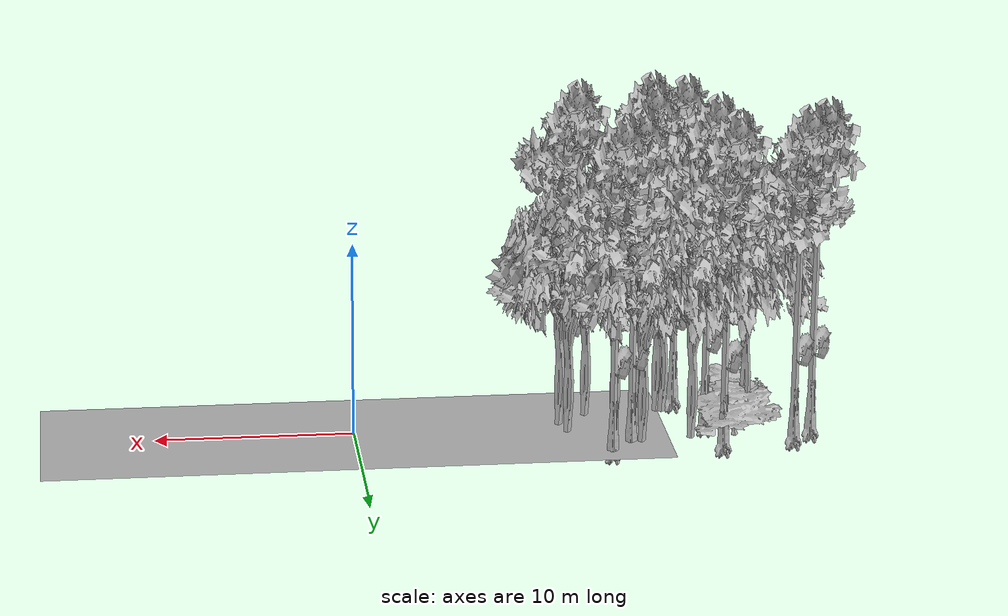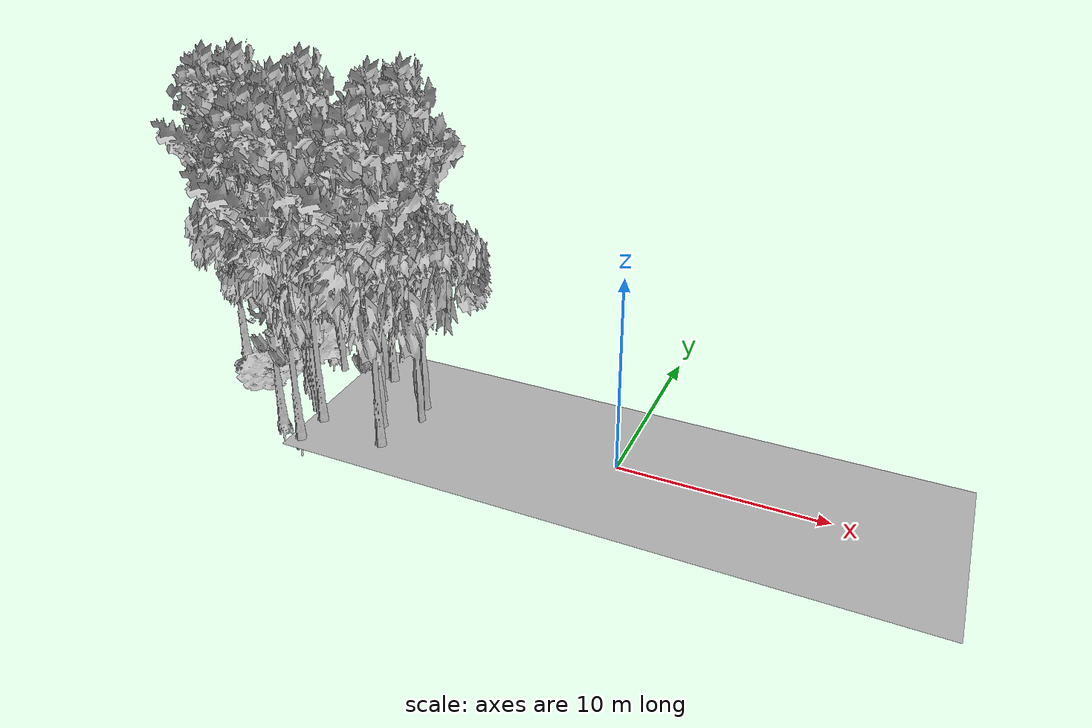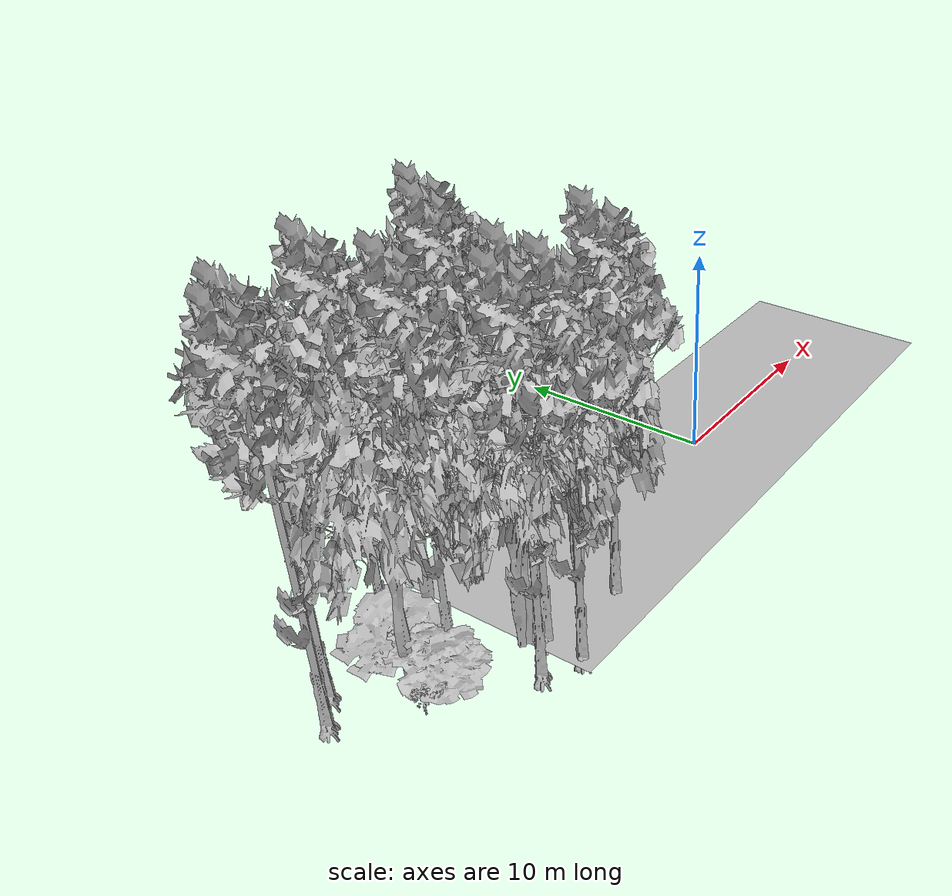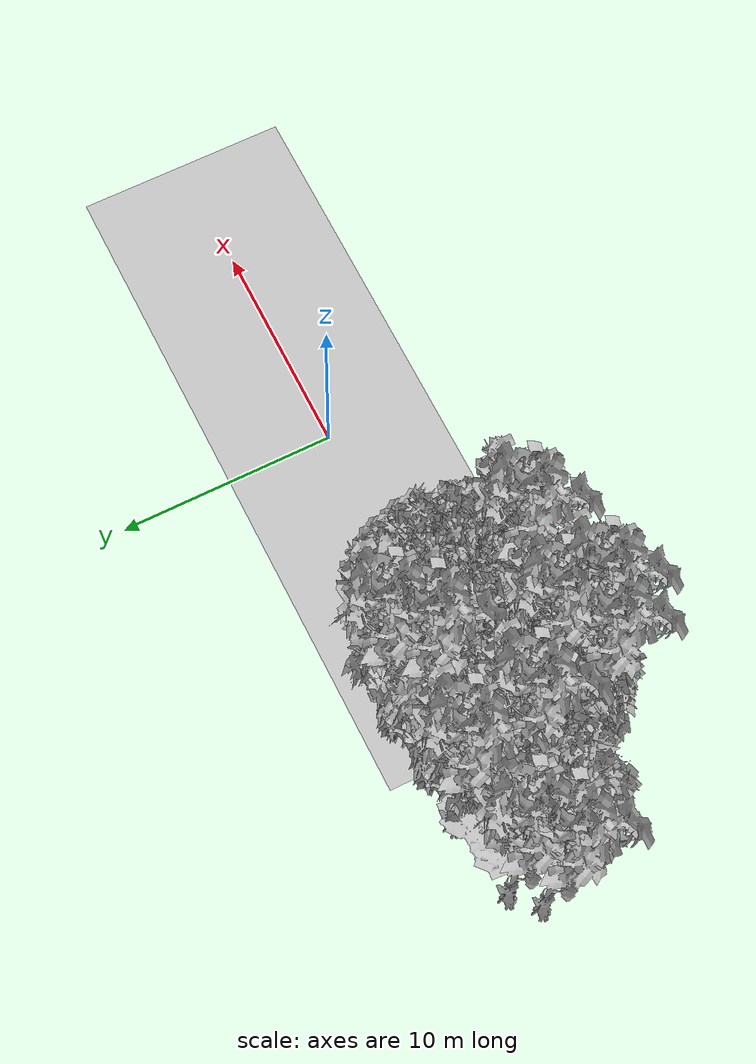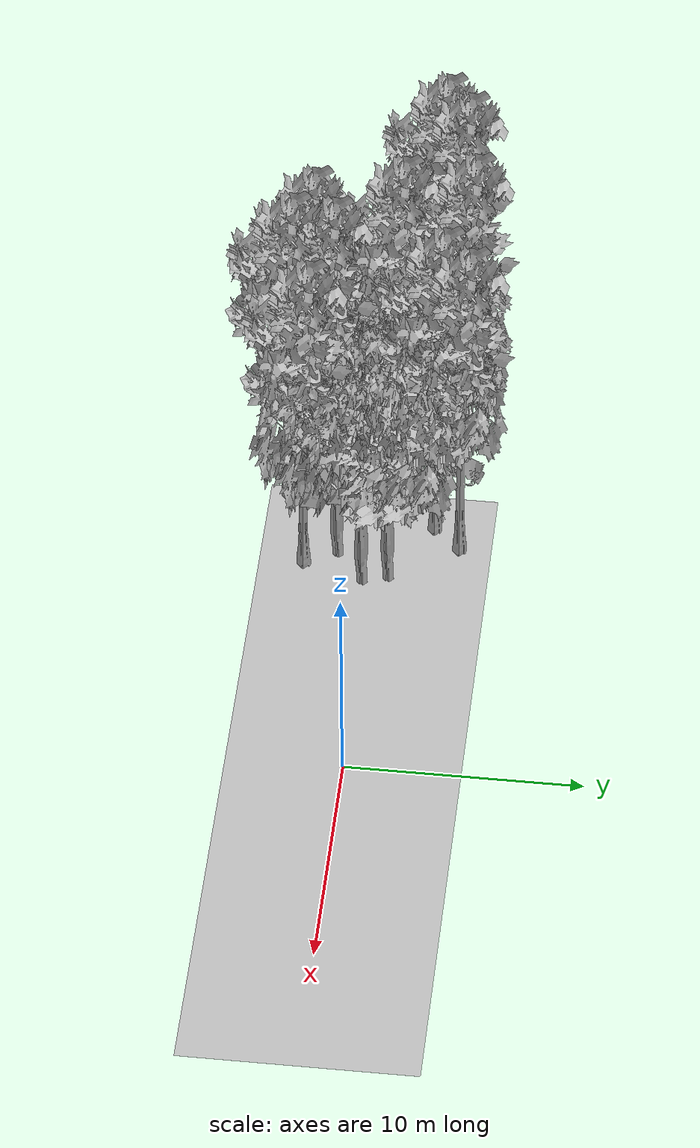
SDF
<sdf version="1.7">
 <world name="default">
  <model name="ground_plane">
   <static>1</static>
   <link name="link">
    <collision name="collision">
     <pose>-50 0 0 0 -0 0</pose>
     <geometry><plane><normal>0 0 1</normal><size>100 100</size></plane></geometry>
     <surface><contact><ode><min_depth>0.01</min_depth><max_vel>0</max_vel></ode></contact></surface>
    </collision>
    <visual name="grass">
     <cast_shadows>0</cast_shadows>
     <geometry>
      <mesh>
       <scale>0.5814285714285714 0.18142857142857144 0.1</scale>
       <uri>file://grass_plane/meshes/grass_plane.dae</uri>
      </mesh>
     </geometry>
    </visual>
   </link>
  </model>
  <model name="Tree 13">
   <static>1</static>
   <pose>-17.790858090442658 0.2607202713093333 0 1.57079 -0 0</pose>
   <link name="link">
    <collision name="collision">
     <geometry><mesh><scale>3.5 5 3.5</scale><uri>model://tree_9/meshes/tree_9.obj</uri></mesh></geometry>
    </collision>
    <visual name="visual">
     <geometry><mesh><scale>3.5 5 3.5</scale><uri>model://tree_9/meshes/tree_9.obj</uri></mesh></geometry>
    </visual>
   </link>
  </model>
  <model name="Tree 27">
   <static>1</static>
   <pose>-15.120431468305682 -4.108669234178874 0 1.57079 -0 0</pose>
   <link name="link">
    <collision name="collision">
     <geometry><mesh><scale>3.5 5 3.5</scale><uri>model://tree_9/meshes/tree_9.obj</uri></mesh></geometry>
    </collision>
    <visual name="visual">
     <geometry><mesh><scale>3.5 5 3.5</scale><uri>model://tree_9/meshes/tree_9.obj</uri></mesh></geometry>
    </visual>
   </link>
  </model>
  <model name="Tree 63">
   <static>1</static>
   <pose>-10.832471750782233 0.667904177542118 0 1.57079 -0 0</pose>
   <link name="link">
    <collision name="collision">
     <geometry><mesh><scale>3.5 5 3.5</scale><uri>model://tree_2/meshes/tree_2.obj</uri></mesh></geometry>
    </collision>
    <visual name="visual">
     <geometry><mesh><scale>3.5 5 3.5</scale><uri>model://tree_2/meshes/tree_2.obj</uri></mesh></geometry>
    </visual>
   </link>
  </model>
  <model name="Tree 81">
   <static>1</static>
   <pose>-19.849428426075367 0.5287848371703685 0 1.57079 -0 0</pose>
   <link name="link">
    <collision name="collision">
     <geometry><mesh><scale>3.5 5 3.5</scale><uri>model://tree_2/meshes/tree_2.obj</uri></mesh></geometry>
    </collision>
    <visual name="visual">
     <geometry><mesh><scale>3.5 5 3.5</scale><uri>model://tree_2/meshes/tree_2.obj</uri></mesh></geometry>
    </visual>
   </link>
  </model>
  <model name="Tree 118">
   <static>1</static>
   <pose>-15.996105113434723 -1.777081332563771 0 1.57079 -0 0</pose>
   <link name="link">
    <collision name="collision">
     <geometry><mesh><scale>3.5 5 3.5</scale><uri>model://tree_2/meshes/tree_2.obj</uri></mesh></geometry>
    </collision>
    <visual name="visual">
     <geometry><mesh><scale>3.5 5 3.5</scale><uri>model://tree_2/meshes/tree_2.obj</uri></mesh></geometry>
    </visual>
   </link>
  </model>
  <model name="Tree 134">
   <static>1</static>
   <pose>-15.722119424426573 -1.8780745041905735 0 1.57079 -0 0</pose>
   <link name="link">
    <collision name="collision">
     <geometry><mesh><scale>3.5 5 3.5</scale><uri>model://tree_2/meshes/tree_2.obj</uri></mesh></geometry>
    </collision>
    <visual name="visual">
     <geometry><mesh><scale>3.5 5 3.5</scale><uri>model://tree_2/meshes/tree_2.obj</uri></mesh></geometry>
    </visual>
   </link>
  </model>
  <model name="Tree 148">
   <static>1</static>
   <pose>-13.241386765604908 0.3433074871372437 0 1.57079 -0 0</pose>
   <link name="link">
    <collision name="collision">
     <geometry><mesh><scale>3.5 5 3.5</scale><uri>model://tree_2/meshes/tree_2.obj</uri></mesh></geometry>
    </collision>
    <visual name="visual">
     <geometry><mesh><scale>3.5 5 3.5</scale><uri>model://tree_2/meshes/tree_2.obj</uri></mesh></geometry>
    </visual>
   </link>
  </model>
  <model name="Tree 198">
   <static>1</static>
   <pose>-15.03541736303118 -2.3353201928146454 0 1.57079 -0 0</pose>
   <link name="link">
    <collision name="collision">
     <geometry><mesh><scale>3.5 5 3.5</scale><uri>model://tree_9/meshes/tree_9.obj</uri></mesh></geometry>
    </collision>
    <visual name="visual">
     <geometry><mesh><scale>3.5 5 3.5</scale><uri>model://tree_9/meshes/tree_9.obj</uri></mesh></geometry>
    </visual>
   </link>
  </model>
  <model name="Tree 287">
   <static>1</static>
   <pose>-12.648419117404586 3.5444123200523343 0 1.57079 -0 0</pose>
   <link name="link">
    <collision name="collision">
     <geometry><mesh><scale>3.5 5 3.5</scale><uri>model://tree_9/meshes/tree_9.obj</uri></mesh></geometry>
    </collision>
    <visual name="visual">
     <geometry><mesh><scale>3.5 5 3.5</scale><uri>model://tree_9/meshes/tree_9.obj</uri></mesh></geometry>
    </visual>
   </link>
  </model>
  <model name="Tree 301">
   <static>1</static>
   <pose>-21.937140124690295 2.588142714011724 0 1.57079 -0 0</pose>
   <link name="link">
    <collision name="collision">
     <geometry><mesh><scale>3.5 5 3.5</scale><uri>model://tree_9/meshes/tree_9.obj</uri></mesh></geometry>
    </collision>
    <visual name="visual">
     <geometry><mesh><scale>3.5 5 3.5</scale><uri>model://tree_9/meshes/tree_9.obj</uri></mesh></geometry>
    </visual>
   </link>
  </model>
  <model name="Tree 306">
   <static>1</static>
   <pose>-16.74074105376326 -3.3765141145364215 0 1.57079 -0 0</pose>
   <link name="link">
    <collision name="collision">
     <geometry><mesh><scale>3.5 5 3.5</scale><uri>model://tree_9/meshes/tree_9.obj</uri></mesh></geometry>
    </collision>
    <visual name="visual">
     <geometry><mesh><scale>3.5 5 3.5</scale><uri>model://tree_9/meshes/tree_9.obj</uri></mesh></geometry>
    </visual>
   </link>
  </model>
  <model name="Tree 307">
   <static>1</static>
   <pose>-11.212591257246068 -2.9768851143468282 0 1.57079 -0 0</pose>
   <link name="link">
    <collision name="collision">
     <geometry><mesh><scale>3.5 5 3.5</scale><uri>model://tree_9/meshes/tree_9.obj</uri></mesh></geometry>
    </collision>
    <visual name="visual">
     <geometry><mesh><scale>3.5 5 3.5</scale><uri>model://tree_9/meshes/tree_9.obj</uri></mesh></geometry>
    </visual>
   </link>
  </model>
  <model name="Tree 319">
   <static>1</static>
   <pose>-22.994126803892183 1.5587377444901094 0 1.57079 -0 0</pose>
   <link name="link">
    <collision name="collision">
     <geometry><mesh><scale>3.5 5 3.5</scale><uri>model://tree_9/meshes/tree_9.obj</uri></mesh></geometry>
    </collision>
    <visual name="visual">
     <geometry><mesh><scale>3.5 5 3.5</scale><uri>model://tree_9/meshes/tree_9.obj</uri></mesh></geometry>
    </visual>
   </link>
  </model>
  <model name="Tree 324">
   <static>1</static>
   <pose>-10.524084971911826 -0.4162451319368259 0 1.57079 -0 0</pose>
   <link name="link">
    <collision name="collision">
     <geometry><mesh><scale>3.5 5 3.5</scale><uri>model://tree_2/meshes/tree_2.obj</uri></mesh></geometry>
    </collision>
    <visual name="visual">
     <geometry><mesh><scale>3.5 5 3.5</scale><uri>model://tree_2/meshes/tree_2.obj</uri></mesh></geometry>
    </visual>
   </link>
  </model>
  <model name="Tree 376">
   <static>1</static>
   <pose>-12.009148092209571 -1.6207558244116758 0 1.57079 -0 0</pose>
   <link name="link">
    <collision name="collision">
     <geometry><mesh><scale>3.5 5 3.5</scale><uri>model://tree_2/meshes/tree_2.obj</uri></mesh></geometry>
    </collision>
    <visual name="visual">
     <geometry><mesh><scale>3.5 5 3.5</scale><uri>model://tree_2/meshes/tree_2.obj</uri></mesh></geometry>
    </visual>
   </link>
  </model>
  <model name="Tree 398">
   <static>1</static>
   <pose>-19.50669204344433 -0.48880172412500755 0 1.57079 -0 0</pose>
   <link name="link">
    <collision name="collision">
     <geometry><mesh><scale>4 2.5 4</scale><uri>model://tree_1/meshes/tree_1.obj</uri></mesh></geometry>
    </collision>
    <visual name="visual">
     <geometry><mesh><scale>4 2.5 4</scale><uri>model://tree_1/meshes/tree_1.obj</uri></mesh></geometry>
    </visual>
   </link>
  </model>
  <model name="Tree 404">
   <static>1</static>
   <pose>-18.259874701008393 3.209417131763775 0 1.57079 -0 0</pose>
   <link name="link">
    <collision name="collision">
     <geometry><mesh><scale>3.5 5 3.5</scale><uri>model://tree_9/meshes/tree_9.obj</uri></mesh></geometry>
    </collision>
    <visual name="visual">
     <geometry><mesh><scale>3.5 5 3.5</scale><uri>model://tree_9/meshes/tree_9.obj</uri></mesh></geometry>
    </visual>
   </link>
  </model>
  <model name="Tree 411">
   <static>1</static>
   <pose>-14.358910496159517 2.4115342527191004 0 1.57079 -0 0</pose>
   <link name="link">
    <collision name="collision">
     <geometry><mesh><scale>3.5 5 3.5</scale><uri>model://tree_2/meshes/tree_2.obj</uri></mesh></geometry>
    </collision>
    <visual name="visual">
     <geometry><mesh><scale>3.5 5 3.5</scale><uri>model://tree_2/meshes/tree_2.obj</uri></mesh></geometry>
    </visual>
   </link>
  </model>
  <model name="Tree 425">
   <static>1</static>
   <pose>-16.879353407964253 2.1328199741284024 0 1.57079 -0 0</pose>
   <link name="link">
    <collision name="collision">
     <geometry><mesh><scale>3.5 5 3.5</scale><uri>model://tree_2/meshes/tree_2.obj</uri></mesh></geometry>
    </collision>
    <visual name="visual">
     <geometry><mesh><scale>3.5 5 3.5</scale><uri>model://tree_2/meshes/tree_2.obj</uri></mesh></geometry>
    </visual>
   </link>
  </model>
  <model name="Tree 456">
   <static>1</static>
   <pose>-19.072162913051482 1.7819003369434618 0 1.57079 -0 0</pose>
   <link name="link">
    <collision name="collision">
     <geometry><mesh><scale>3 2 3</scale><uri>model://tree_3/meshes/tree_3.obj</uri></mesh></geometry>
    </collision>
    <visual name="visual">
     <geometry><mesh><scale>3 2 3</scale><uri>model://tree_3/meshes/tree_3.obj</uri></mesh></geometry>
    </visual>
   </link>
  </model>
  <model name="Tree 487">
   <static>1</static>
   <pose>-13.733744035030945 2.378859710245667 0 1.57079 -0 0</pose>
   <link name="link">
    <collision name="collision">
     <geometry><mesh><scale>3.5 5 3.5</scale><uri>model://tree_9/meshes/tree_9.obj</uri></mesh></geometry>
    </collision>
    <visual name="visual">
     <geometry><mesh><scale>3.5 5 3.5</scale><uri>model://tree_9/meshes/tree_9.obj</uri></mesh></geometry>
    </visual>
   </link>
  </model>
  <model name="Bush 0">
   <static>1</static>
   <pose>-20.68560419132979 -1.1262060450707718 0 1.57079 -0 0</pose>
   <link name="link">
    <collision name="collision">
     <geometry><mesh><scale>2 2 2</scale><uri>model://bush_5/meshes/bush_5.obj</uri></mesh></geometry>
     <surface><contact><collide_without_contact>false</collide_without_contact></contact></surface>
    </collision>
    <visual name="visual">
     <geometry><mesh><scale>2 2 2</scale><uri>model://bush_5/meshes/bush_5.obj</uri></mesh></geometry>
    </visual>
   </link>
  </model>
 </world>
</sdf>
